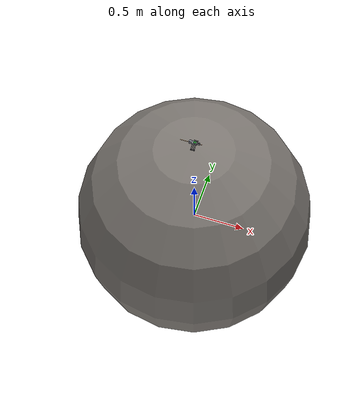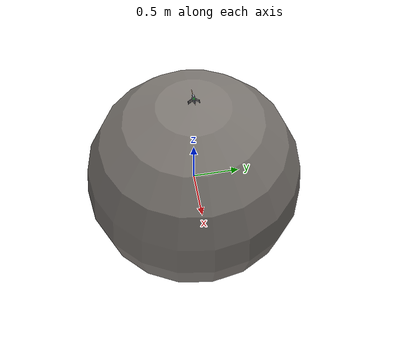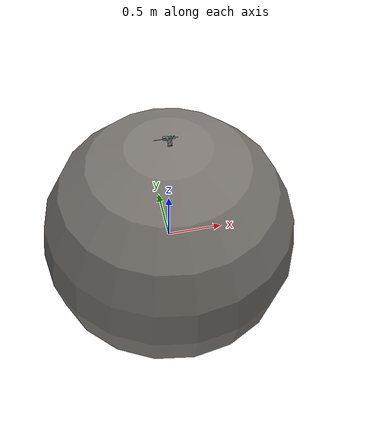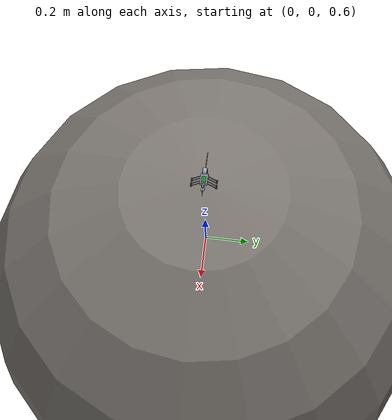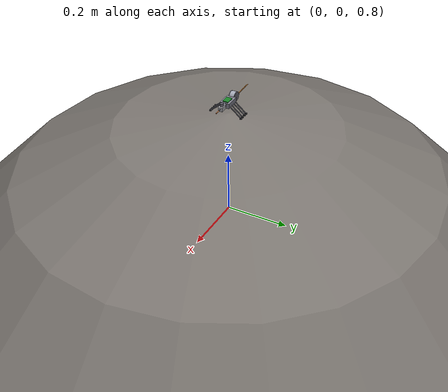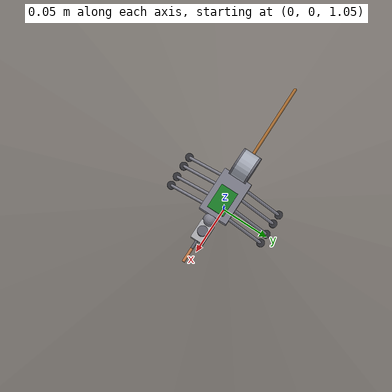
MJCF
<mujoco model="astraant_printer_bot">

  <compiler angle="degree" coordinate="local"/>

  <option timestep="0.001" gravity="0 0 -6e-6">
    <flag contact="enable"/>
  </option>

  <default>
    <joint damping="0.001" armature="0.00001" limited="true"/>
    <geom condim="3" friction="0.8 0.005 0.001" solref="0.02 1"/>
  </default>

  <asset>
    <material name="iron_chassis" rgba="0.50 0.50 0.55 1"/>
    <material name="iron_dark" rgba="0.40 0.40 0.44 1"/>
    <material name="leg_iron" rgba="0.55 0.55 0.60 1"/>
    <material name="foot_pad_mat" rgba="0.20 0.20 0.22 1"/>
    <material name="pcb_green" rgba="0.10 0.50 0.15 1"/>
    <material name="copper_nozzle" rgba="0.80 0.50 0.30 1"/>
    <material name="silver_housing" rgba="0.70 0.70 0.72 1"/>
    <material name="wire_spool" rgba="0.65 0.67 0.72 1"/>
    <material name="tether_copper" rgba="0.70 0.45 0.20 1"/>
    <material name="iron_shell" rgba="0.48 0.46 0.44 1"/>
  </asset>

  <worldbody>
    <!-- Space lighting: sun from one side, ambient fill from others -->
    <light diffuse="1.0 0.95 0.85" dir="-0.3 -0.2 -0.8" pos="1.0 0.5 2.0"/>
    <light diffuse="0.4 0.4 0.5" dir="0.5 0.5 -0.3" pos="-1.0 -1.0 1.5"/>
    <light diffuse="0.2 0.2 0.25" dir="0 0 1" pos="0 0 -2.0"/>

    <!-- Iron shell sphere (Gen 1, 1.15m radius) -- bot walks on OUTSIDE -->
    <geom name="iron_shell" type="sphere" size="1.15"
          pos="0 0 0" material="iron_shell"
          friction="0.6 0.01 0.001" condim="6"/>

    <body name="torso" pos="0 0 1.190">
      <freejoint name="root"/>
      <camera name="track" pos="0 -0.20 0.10" xyaxes="1 0 0 0 0.5 1" mode="track"/>
      <camera name="overhead" pos="0 0 0.30" xyaxes="1 0 0 0 1 0" mode="track"/>

      <!-- Thorax: 45 x 30 x 16mm WAAM-printed iron chassis + wiring harness -->
      <geom name="thorax" type="box" size="0.0225 0.015 0.008"
            mass="0.105" material="iron_chassis"/>

      <!-- Head dome: 7mm radius sphere at front of thorax -->
      <geom name="head_dome" type="sphere" size="0.007"
            pos="0.027 0 0.003" mass="0.005" material="iron_chassis"/>

      <!-- ESP32-S3 board on top of thorax (electronics bay) -->
      <geom name="esp32" type="box" size="0.01275 0.009 0.0015"
            pos="0.005 0 0.0095" mass="0.003" material="pcb_green"/>

      <!-- WAAM PRINT HEAD (front-mounted, below head)  -->
      <!-- Total assembly: 60g                          -->
      <body name="print_head" pos="0.040 0 0.0">
        <!-- Housing: 20 x 14 x 12mm iron box -->
        <geom name="head_housing" type="box" size="0.010 0.007 0.006"
              mass="0.040" material="silver_housing"/>

        <!-- Feed roller left -->
        <geom name="roller_L" type="cylinder" size="0.004 0.0025"
              pos="0.002 0.003 0" euler="90 0 0"
              mass="0.002" material="iron_dark"/>

        <!-- Feed roller right -->
        <geom name="roller_R" type="cylinder" size="0.004 0.0025"
              pos="0.002 -0.003 0" euler="90 0 0"
              mass="0.002" material="iron_dark"/>

        <!-- Wire guide tube -->
        <geom name="wire_guide" type="capsule"
              fromto="0.010 0 0  0.018 0 0"
              size="0.0015" mass="0.002" material="iron_dark"/>

        <!-- Arc nozzle: 3mm dia x 15mm, extending forward -->
        <geom name="arc_nozzle" type="cylinder" size="0.0015 0.0075"
              pos="0.026 0 0" euler="0 90 0"
              mass="0.006" material="copper_nozzle"/>

        <!-- Feed motor (small cylinder on top) -->
        <geom name="feed_motor" type="cylinder" size="0.005 0.006"
              pos="0 0 0.010" mass="0.008" material="iron_dark"/>
      </body>

      <!-- WIRE BOBBIN (rear-mounted spool)             -->
      <!-- Total: 52g (30g frame + 22g wire)            -->
      <body name="wire_bobbin" pos="-0.034 0 0.003">
        <!-- Spool cylinder: 15mm radius x 15mm wide, with wire -->
        <geom name="bobbin_core" type="cylinder" size="0.015 0.0075"
              euler="90 0 0" mass="0.042" material="wire_spool"/>

        <!-- Flanges (visual detail) -->
        <geom name="bobbin_flange_L" type="cylinder" size="0.015 0.001"
              pos="0 0.0085 0" euler="90 0 0"
              mass="0.005" material="iron_dark"/>
        <geom name="bobbin_flange_R" type="cylinder" size="0.015 0.001"
              pos="0 -0.0085 0" euler="90 0 0"
              mass="0.005" material="iron_dark"/>
      </body>

      <!-- POWER TETHER (rear stub, 5m copper cable)    -->
      <!-- 50g total cable mass in visual stub          -->
      <geom name="tether_stub" type="capsule"
            fromto="-0.0225 0 -0.003  -0.1225 0 -0.003"
            size="0.0015" mass="0.050" material="tether_copper"/>

      <!-- 8 LEGS: 4 pairs along thorax                 -->
      <!-- Same layout as worker_ant_8leg.xml           -->
      <!-- Pair positions: x = +0.016, +0.006, -0.006, -0.016 -->
      <!-- Each leg: 15g (5g iron rod + 9g SG90 servo + 1g) -->
      <!-- Each foot pad: 2g (iron disc + NdFeB magnet) -->

      <!-- Pair 1: x=+0.016 (front) -->
      <body name="leg_0_FL" pos="0.016 0.015 -0.004">
        <joint name="j_leg_0" type="hinge" axis="0 -1 0" range="-30 30"/>
        <geom name="leg_0" type="capsule" fromto="0 0 0  0 0.036 -0.030"
              size="0.0015" mass="0.015" material="leg_iron"/>
        <body name="foot_0" pos="0 0.036 -0.030">
          <geom name="foot_0_pad" type="cylinder" size="0.004 0.0015"
                mass="0.002" material="foot_pad_mat"
                friction="5.0 0.02 0.005" condim="6" solref="0.01 1"/>
        </body>
      </body>
      <body name="leg_1_FR" pos="0.016 -0.015 -0.004">
        <joint name="j_leg_1" type="hinge" axis="0 -1 0" range="-30 30"/>
        <geom name="leg_1" type="capsule" fromto="0 0 0  0 -0.036 -0.030"
              size="0.0015" mass="0.015" material="leg_iron"/>
        <body name="foot_1" pos="0 -0.036 -0.030">
          <geom name="foot_1_pad" type="cylinder" size="0.004 0.0015"
                mass="0.002" material="foot_pad_mat"
                friction="5.0 0.02 0.005" condim="6" solref="0.01 1"/>
        </body>
      </body>

      <!-- Pair 2: x=+0.006 -->
      <body name="leg_2_M1L" pos="0.006 0.015 -0.004">
        <joint name="j_leg_2" type="hinge" axis="0 -1 0" range="-30 30"/>
        <geom name="leg_2" type="capsule" fromto="0 0 0  0 0.036 -0.030"
              size="0.0015" mass="0.015" material="leg_iron"/>
        <body name="foot_2" pos="0 0.036 -0.030">
          <geom name="foot_2_pad" type="cylinder" size="0.004 0.0015"
                mass="0.002" material="foot_pad_mat"
                friction="5.0 0.02 0.005" condim="6" solref="0.01 1"/>
        </body>
      </body>
      <body name="leg_3_M1R" pos="0.006 -0.015 -0.004">
        <joint name="j_leg_3" type="hinge" axis="0 -1 0" range="-30 30"/>
        <geom name="leg_3" type="capsule" fromto="0 0 0  0 -0.036 -0.030"
              size="0.0015" mass="0.015" material="leg_iron"/>
        <body name="foot_3" pos="0 -0.036 -0.030">
          <geom name="foot_3_pad" type="cylinder" size="0.004 0.0015"
                mass="0.002" material="foot_pad_mat"
                friction="5.0 0.02 0.005" condim="6" solref="0.01 1"/>
        </body>
      </body>

      <!-- Pair 3: x=-0.006 -->
      <body name="leg_4_M2L" pos="-0.006 0.015 -0.004">
        <joint name="j_leg_4" type="hinge" axis="0 -1 0" range="-30 30"/>
        <geom name="leg_4" type="capsule" fromto="0 0 0  0 0.036 -0.030"
              size="0.0015" mass="0.015" material="leg_iron"/>
        <body name="foot_4" pos="0 0.036 -0.030">
          <geom name="foot_4_pad" type="cylinder" size="0.004 0.0015"
                mass="0.002" material="foot_pad_mat"
                friction="5.0 0.02 0.005" condim="6" solref="0.01 1"/>
        </body>
      </body>
      <body name="leg_5_M2R" pos="-0.006 -0.015 -0.004">
        <joint name="j_leg_5" type="hinge" axis="0 -1 0" range="-30 30"/>
        <geom name="leg_5" type="capsule" fromto="0 0 0  0 -0.036 -0.030"
              size="0.0015" mass="0.015" material="leg_iron"/>
        <body name="foot_5" pos="0 -0.036 -0.030">
          <geom name="foot_5_pad" type="cylinder" size="0.004 0.0015"
                mass="0.002" material="foot_pad_mat"
                friction="5.0 0.02 0.005" condim="6" solref="0.01 1"/>
        </body>
      </body>

      <!-- Pair 4: x=-0.016 (rear) -->
      <body name="leg_6_RL" pos="-0.016 0.015 -0.004">
        <joint name="j_leg_6" type="hinge" axis="0 -1 0" range="-30 30"/>
        <geom name="leg_6" type="capsule" fromto="0 0 0  0 0.036 -0.030"
              size="0.0015" mass="0.015" material="leg_iron"/>
        <body name="foot_6" pos="0 0.036 -0.030">
          <geom name="foot_6_pad" type="cylinder" size="0.004 0.0015"
                mass="0.002" material="foot_pad_mat"
                friction="5.0 0.02 0.005" condim="6" solref="0.01 1"/>
        </body>
      </body>
      <body name="leg_7_RR" pos="-0.016 -0.015 -0.004">
        <joint name="j_leg_7" type="hinge" axis="0 -1 0" range="-30 30"/>
        <geom name="leg_7" type="capsule" fromto="0 0 0  0 -0.036 -0.030"
              size="0.0015" mass="0.015" material="leg_iron"/>
        <body name="foot_7" pos="0 -0.036 -0.030">
          <geom name="foot_7_pad" type="cylinder" size="0.004 0.0015"
                mass="0.002" material="foot_pad_mat"
                friction="5.0 0.02 0.005" condim="6" solref="0.01 1"/>
        </body>
      </body>

    </body>
  </worldbody>

  <actuator>
    <!-- SG90 servos: 0.018 N*m torque, 60 deg in 0.1s -->
    <position name="servo_leg_0" joint="j_leg_0" kp="5.0" kv="0.01"
              ctrlrange="-30 30" forcerange="-0.018 0.018"/>
    <position name="servo_leg_1" joint="j_leg_1" kp="5.0" kv="0.01"
              ctrlrange="-30 30" forcerange="-0.018 0.018"/>
    <position name="servo_leg_2" joint="j_leg_2" kp="5.0" kv="0.01"
              ctrlrange="-30 30" forcerange="-0.018 0.018"/>
    <position name="servo_leg_3" joint="j_leg_3" kp="5.0" kv="0.01"
              ctrlrange="-30 30" forcerange="-0.018 0.018"/>
    <position name="servo_leg_4" joint="j_leg_4" kp="5.0" kv="0.01"
              ctrlrange="-30 30" forcerange="-0.018 0.018"/>
    <position name="servo_leg_5" joint="j_leg_5" kp="5.0" kv="0.01"
              ctrlrange="-30 30" forcerange="-0.018 0.018"/>
    <position name="servo_leg_6" joint="j_leg_6" kp="5.0" kv="0.01"
              ctrlrange="-30 30" forcerange="-0.018 0.018"/>
    <position name="servo_leg_7" joint="j_leg_7" kp="5.0" kv="0.01"
              ctrlrange="-30 30" forcerange="-0.018 0.018"/>
  </actuator>

  <sensor>
    <framepos name="torso_pos" objtype="body" objname="torso"/>
    <framequat name="torso_quat" objtype="body" objname="torso"/>
    <framelinvel name="torso_linvel" objtype="body" objname="torso"/>
  </sensor>

</mujoco>
